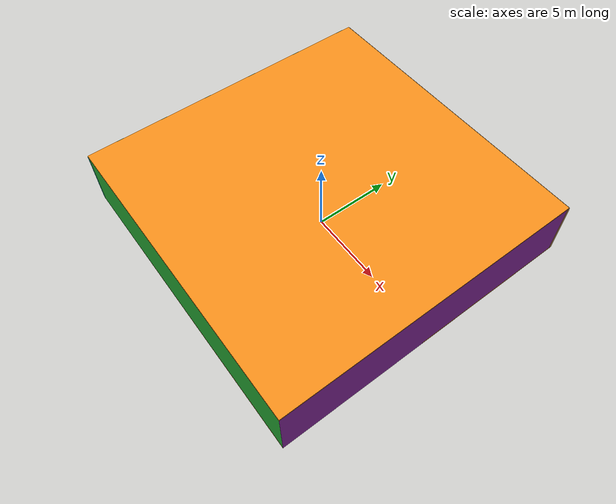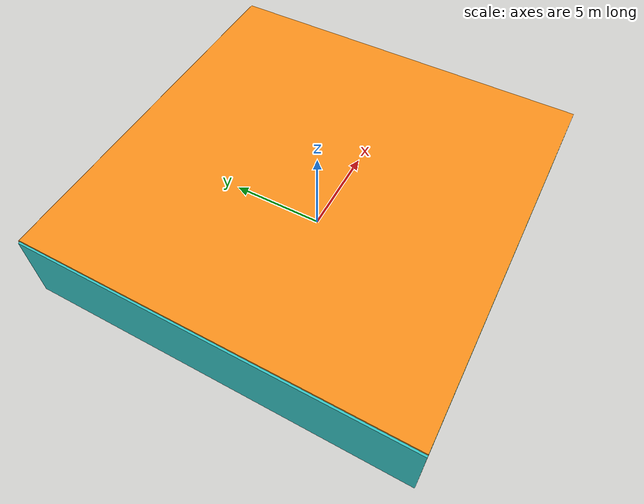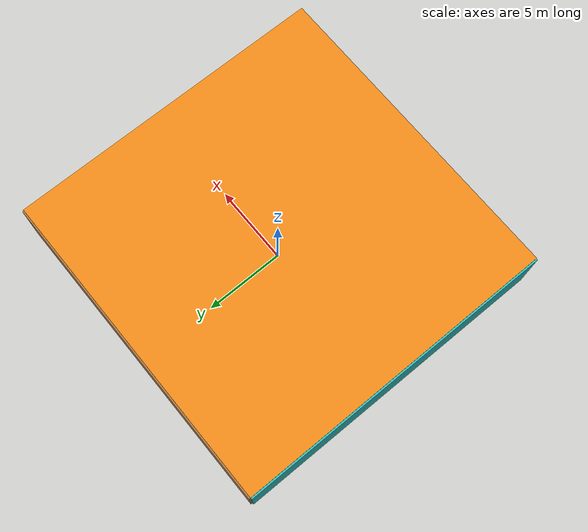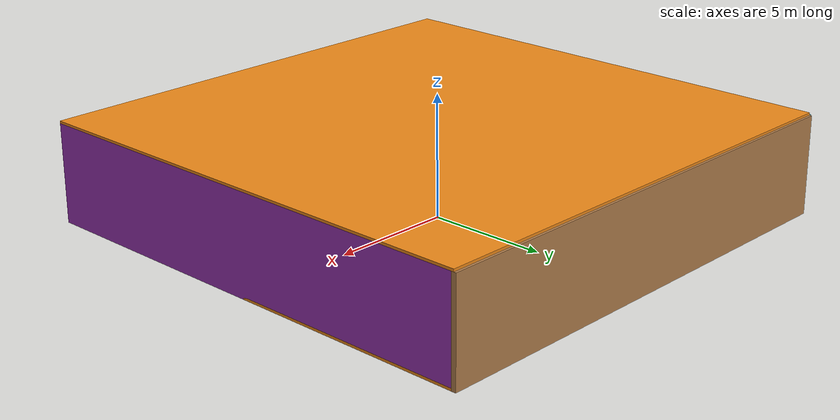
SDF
<sdf version="1.4">
 <world name="default">
  <physics type="ode">
   <max_step_size>0.001</max_step_size>
   <real_time_factor>1</real_time_factor>
   <real_time_update_rate>1000</real_time_update_rate>
   <gravity>0 0 -9.8</gravity>
  </physics>
  <scene><ambient>0.4 0.4 0.4 1</ambient><background>0.7 0.7 0.7 1</background><shadows>1</shadows></scene>
  <model name="Surrounding">
   <static>1</static>
   <link name="Ceiling">
    <collision name="Ceiling_Collision"><geometry><box><size>20 20 0.1</size></box></geometry></collision>
    <visual name="Ceiling_Visual">
     <geometry><box><size>20 20 0.1</size></box></geometry>
     <material>
      <script><uri>file://media/materials/scripts/gazebo.material</uri><name>Gazebo/Orange</name></script>
     </material>
    </visual>
    <pose>0 0 4.05 0 0 0</pose>
   </link>
   <link name="Wall_South">
    <collision name="Wall_South_Collision">
     <geometry><box><size>20 0 4</size></box></geometry>
     <pose>0 0 2 0 -0 0</pose>
    </collision>
    <visual name="Wall_South_Visual">
     <pose>0 0 2 0 -0 0</pose>
     <geometry><box><size>20 0 4</size></box></geometry>
     <material>
      <script><uri>file://media/materials/scripts/gazebo.material</uri><name>Gazebo/GreenGlow</name></script>
     </material>
    </visual>
    <velocity_decay><linear>0</linear><angular>0</angular></velocity_decay>
    <pose>0 -10 0 0 -0 0</pose>
   </link>
   <link name="Wall_East">
    <collision name="Wall_21_Collision">
     <geometry><box><size>20 0 4</size></box></geometry>
     <pose>0 0 2 0 -0 0</pose>
    </collision>
    <visual name="Wall_21_Visual">
     <pose>0 0 2 0 -0 0</pose>
     <geometry><box><size>20 0 4</size></box></geometry>
     <material>
      <script><uri>file://media/materials/scripts/gazebo.material</uri><name>Gazebo/PurpleGlow</name></script>
     </material>
    </visual>
    <velocity_decay><linear>0</linear><angular>0</angular></velocity_decay>
    <pose>10 0 0 0 -0 1.5708</pose>
   </link>
   <link name="Wall_North">
    <collision name="Wall_22_Collision">
     <geometry><box><size>20 0.2 4</size></box></geometry>
     <pose>0 0 2 0 -0 0</pose>
    </collision>
    <visual name="Wall_22_Visual">
     <pose>0 0 2 0 -0 0</pose>
     <geometry><box><size>20 0.2 4</size></box></geometry>
     <material>
      <script><uri>file://media/materials/scripts/gazebo.material</uri><name>Gazebo/Wood</name></script>
     </material>
    </visual>
    <velocity_decay><linear>0</linear><angular>0</angular></velocity_decay>
    <pose>0 10 0 0 -0 0</pose>
   </link>
   <link name="Wall_West">
    <collision name="Wall_23_Collision">
     <geometry><box><size>20 0.2 4</size></box></geometry>
     <pose>0 0 2 0 -0 0</pose>
    </collision>
    <visual name="Wall_23_Visual">
     <pose>0 0 2 0 -0 0</pose>
     <geometry><box><size>20 0.2 4</size></box></geometry>
     <material>
      <script><uri>file://media/materials/scripts/gazebo.material</uri><name>Gazebo/TurquoiseGlow</name></script>
     </material>
    </visual>
    <velocity_decay><linear>0</linear><angular>0</angular></velocity_decay>
    <pose>-10 0 0 0 0 -1.5708</pose>
   </link>
   <link name="Ground_link">
    <collision name="collision">
     <pose>0 0 .05 0 -0 0</pose>
     <geometry><box><size>20 20 0.1</size></box></geometry>
    </collision>
    <visual name="visual">
     <pose>0 0 .05 0 -0 0</pose>
     <geometry><box><size>20 20 0.1</size></box></geometry>
     <material>
      <script><uri>file://media/materials/scripts/gazebo.material</uri><name>Gazebo/Orange</name></script>
     </material>
    </visual>
   </link>
   <static>1</static>
  </model>
  <spherical_coordinates>
   <surface_model>EARTH_WGS84</surface_model>
   <latitude_deg>0</latitude_deg>
   <longitude_deg>0</longitude_deg>
   <elevation>0</elevation>
   <heading_deg>0</heading_deg>
  </spherical_coordinates>
  <light name="lightball_0" type="diffuse">
   <diffuse>0.8 0.8 0.8 1</diffuse>
   <specular>0.2 0.2 0.2 1</specular>
   <attenuation>
    <range>100</range>
    <constant>0.7</constant>
    <linear>0.01</linear>
    <quadratic>0.001</quadratic>
   </attenuation>
   <direction>-0.5 0.1 -0.9</direction>
   <pose>9.59237745647 -4.5522383532 1.18692268879 0 0 0</pose>
  </light>
  <light name="lightball_1" type="diffuse">
   <diffuse>0.8 0.8 0.8 1</diffuse>
   <specular>0.2 0.2 0.2 1</specular>
   <attenuation>
    <range>100</range>
    <constant>0.7</constant>
    <linear>0.01</linear>
    <quadratic>0.001</quadratic>
   </attenuation>
   <direction>-0.5 0.1 -0.9</direction>
   <pose>-7.270621424 -8.05684510675 0.977342575398 0 0 0</pose>
  </light>
  <light name="lightball_2" type="diffuse">
   <diffuse>0.8 0.8 0.8 1</diffuse>
   <specular>0.2 0.2 0.2 1</specular>
   <attenuation>
    <range>100</range>
    <constant>0.7</constant>
    <linear>0.01</linear>
    <quadratic>0.001</quadratic>
   </attenuation>
   <direction>-0.5 0.1 -0.9</direction>
   <pose>-8.0707978241 3.95356585335 3.39752456564 0 0 0</pose>
  </light>
  <light name="lightball_3" type="diffuse">
   <diffuse>0.8 0.8 0.8 1</diffuse>
   <specular>0.2 0.2 0.2 1</specular>
   <attenuation>
    <range>100</range>
    <constant>0.7</constant>
    <linear>0.01</linear>
    <quadratic>0.001</quadratic>
   </attenuation>
   <direction>-0.5 0.1 -0.9</direction>
   <pose>3.8479997512 0.752568183126 3.79705645428 0 0 0</pose>
  </light>
  <light name="lightball_4" type="diffuse">
   <diffuse>0.8 0.8 0.8 1</diffuse>
   <specular>0.2 0.2 0.2 1</specular>
   <attenuation>
    <range>100</range>
    <constant>0.7</constant>
    <linear>0.01</linear>
    <quadratic>0.001</quadratic>
   </attenuation>
   <direction>-0.5 0.1 -0.9</direction>
   <pose>-1.40926674031 -6.18828195534 0.669786948342 0 0 0</pose>
  </light>
  <light name="lightball_5" type="diffuse">
   <diffuse>0.8 0.8 0.8 1</diffuse>
   <specular>0.2 0.2 0.2 1</specular>
   <attenuation>
    <range>100</range>
    <constant>0.7</constant>
    <linear>0.01</linear>
    <quadratic>0.001</quadratic>
   </attenuation>
   <direction>-0.5 0.1 -0.9</direction>
   <pose>3.13722959302 -1.14433219258 3.54102153753 0 0 0</pose>
  </light>
  <light name="lightball_6" type="diffuse">
   <diffuse>0.8 0.8 0.8 1</diffuse>
   <specular>0.2 0.2 0.2 1</specular>
   <attenuation>
    <range>100</range>
    <constant>0.7</constant>
    <linear>0.01</linear>
    <quadratic>0.001</quadratic>
   </attenuation>
   <direction>-0.5 0.1 -0.9</direction>
   <pose>2.19738973656 -3.59301337738 0.664202445645 0 0 0</pose>
  </light>
  <light name="lightball_7" type="diffuse">
   <diffuse>0.8 0.8 0.8 1</diffuse>
   <specular>0.2 0.2 0.2 1</specular>
   <attenuation>
    <range>100</range>
    <constant>0.7</constant>
    <linear>0.01</linear>
    <quadratic>0.001</quadratic>
   </attenuation>
   <direction>-0.5 0.1 -0.9</direction>
   <pose>5.50078434165 3.7799180944 1.01138204494 0 0 0</pose>
  </light>
  <light name="lightball_8" type="diffuse">
   <diffuse>0.8 0.8 0.8 1</diffuse>
   <specular>0.2 0.2 0.2 1</specular>
   <attenuation>
    <range>100</range>
    <constant>0.7</constant>
    <linear>0.01</linear>
    <quadratic>0.001</quadratic>
   </attenuation>
   <direction>-0.5 0.1 -0.9</direction>
   <pose>1.54622868277 -9.47401350124 1.65834253552 0 0 0</pose>
  </light>
  <light name="lightball_9" type="diffuse">
   <diffuse>0.8 0.8 0.8 1</diffuse>
   <specular>0.2 0.2 0.2 1</specular>
   <attenuation>
    <range>100</range>
    <constant>0.7</constant>
    <linear>0.01</linear>
    <quadratic>0.001</quadratic>
   </attenuation>
   <direction>-0.5 0.1 -0.9</direction>
   <pose>7.29374408726 2.28345384804 1.18261110952 0 0 0</pose>
  </light>
  <include><uri>model://table</uri><pose>-1.69028752728 1.81302185429 0 0 0 0.748223176667</pose></include>
  <include>
   <uri>model://robocup_3Dsim_goal</uri>
   <pose>-1.8863062232 4.74790654995 0 0 0 0.585997660548</pose>
  </include>
  <include><uri>model://table</uri><pose>4.7725935811 4.43556551302 0 0 0 1.86352463124</pose></include>
  <include>
   <uri>model://robocup_3Dsim_goal</uri>
   <pose>6.94436617901 4.77139212107 0 0 0 0.815599758902</pose>
  </include>
 </world>
</sdf>

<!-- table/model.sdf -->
<sdf version="1.5">
  <model name="table">
    <static>true</static>
    <link name="link">
      <collision name="surface">
        <pose>0 0 1.0 0 0 0</pose>
        <geometry>
          <box>
            <size>1.5 0.8 0.03</size>
          </box>
        </geometry>
        <surface>
          <friction>
            <ode>
              <mu>0.6</mu>
              <mu2>0.6</mu2>
            </ode>
          </friction>
        </surface>
      </collision>
      <visual name="visual1">
        <pose>0 0 1.0 0 0 0</pose>
        <geometry>
          <box>
            <size>1.5 0.8 0.03</size>
          </box>
        </geometry>
        <material>
          <script>
            <uri>model://media/materials/scripts/gazebo.material</uri>
            <name>Gazebo/Wood</name>
          </script>
        </material>
      </visual>
      <collision name="front_left_leg">
        <pose>0.68 0.38 0.5 0 0 0</pose>
        <geometry>
          <cylinder>
            <radius>0.02</radius>
            <length>1.0</length>
          </cylinder>
        </geometry>
      </collision>
      <visual name="front_left_leg">
        <pose>0.68 0.38 0.5 0 0 0</pose>
        <geometry>
          <cylinder>
            <radius>0.02</radius>
            <length>1.0</length>
          </cylinder>
        </geometry>
        <material>
          <script>
            <uri>model://media/materials/scripts/gazebo.material</uri>
            <name>Gazebo/Grey</name>
          </script>
        </material>
      </visual>
      <collision name="front_right_leg">
        <pose>0.68 -0.38 0.5 0 0 0</pose>
        <geometry>
          <cylinder>
            <radius>0.02</radius>
            <length>1.0</length>
          </cylinder>
        </geometry>
      </collision>
      <visual name="front_right_leg">
        <pose>0.68 -0.38 0.5 0 0 0</pose>
        <geometry>
          <cylinder>
            <radius>0.02</radius>
            <length>1.0</length>
          </cylinder>
        </geometry>
        <material>
          <script>
            <uri>model://media/materials/scripts/gazebo.material</uri>
            <name>Gazebo/Grey</name>
          </script>
        </material>
      </visual>
      <collision name="back_right_leg">
        <pose>-0.68 -0.38 0.5 0 0 0</pose>
        <geometry>
          <cylinder>
            <radius>0.02</radius>
            <length>1.0</length>
          </cylinder>
        </geometry>
      </collision>
      <visual name="back_right_leg">
        <pose>-0.68 -0.38 0.5 0 0 0</pose>
        <geometry>
          <cylinder>
            <radius>0.02</radius>
            <length>1.0</length>
          </cylinder>
        </geometry>
        <material>
          <script>
            <uri>model://media/materials/scripts/gazebo.material</uri>
            <name>Gazebo/Grey</name>
          </script>
        </material>
      </visual>
      <collision name="back_left_leg">
        <pose>-0.68 0.38 0.5 0 0 0</pose>
        <geometry>
          <cylinder>
            <radius>0.02</radius>
            <length>1.0</length>
          </cylinder>
        </geometry>
      </collision>
      <visual name="back_left_leg">
        <pose>-0.68 0.38 0.5 0 0 0</pose>
        <geometry>
          <cylinder>
            <radius>0.02</radius>
            <length>1.0</length>
          </cylinder>
        </geometry>
        <material>
          <script>
            <uri>model://media/materials/scripts/gazebo.material</uri>
            <name>Gazebo/Grey</name>
          </script>
        </material>
      </visual>
    </link>
  </model>
</sdf>

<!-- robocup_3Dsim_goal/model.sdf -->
<sdf version="1.5">
  <model name="robocup_3d_goal">
    <static>true</static>
    <link name="left_post">
      <pose>0 1.05 0.45 0 0 0</pose>
      <collision name="collision">
        <geometry>
          <cylinder>
            <radius>0.05</radius>
            <length>0.9</length>
          </cylinder>
        </geometry>
      </collision>
      <visual name="visual">
        <geometry>
          <cylinder>
            <radius>0.05</radius>
            <length>0.9</length>
          </cylinder>
        </geometry>
        <material>
          <script>
            <uri>file://media/materials/scripts/gazebo.material</uri>
            <name>Gazebo/ZincYellow</name>
          </script>
        </material>
      </visual>
    </link>
    <link name="left_support_horiz_lower">
      <pose>0.30 1.05 0.01 0 0 0</pose>
      <collision name="collision">
        <geometry>
          <box>
            <size>0.50 0.02 0.02</size>
          </box>
        </geometry>
      </collision>
      <visual name="visual">
        <geometry>
          <box>
            <size>0.50 0.02 0.02</size>
          </box>
        </geometry>
        <material>
          <script>
            <uri>file://media/materials/scripts/gazebo.material</uri>
            <name>Gazebo/White</name>
          </script>
        </material>
      </visual>
    </link>
    <link name="left_support_horiz_upper">
      <pose>0.30 1.05 0.79 0 0 0</pose>
      <collision name="collision">
        <geometry>
          <box>
            <size>0.50 0.02 0.02</size>
          </box>
        </geometry>
      </collision>
      <visual name="visual">
        <geometry>
          <box>
            <size>0.50 0.02 0.02</size>
          </box>
        </geometry>
        <material>
          <script>
            <uri>file://media/materials/scripts/gazebo.material</uri>
            <name>Gazebo/White</name>
          </script>
        </material>
      </visual>
    </link>
    <link name="left_support_vertical">
      <pose>0.56 1.05 0.4 0 1.5708 0</pose>
      <collision name="collision">
        <geometry>
          <box>
            <size>0.80 0.02 0.02</size>
          </box>
        </geometry>
      </collision>
      <visual name="visual">
        <geometry>
          <box>
            <size>0.80 0.02 0.02</size>
          </box>
        </geometry>
        <material>
          <script>
            <uri>file://media/materials/scripts/gazebo.material</uri>
            <name>Gazebo/White</name>
          </script>
        </material>
      </visual>
    </link>
    <link name="right_support_horiz_lower">
      <pose>0.30 -1.05 0.01 0 0 0</pose>
      <collision name="collision">
        <geometry>
          <box>
            <size>0.50 0.02 0.02</size>
          </box>
        </geometry>
      </collision>
      <visual name="visual">
        <geometry>
          <box>
            <size>0.50 0.02 0.02</size>
          </box>
        </geometry>
        <material>
          <script>
            <uri>file://media/materials/scripts/gazebo.material</uri>
            <name>Gazebo/White</name>
          </script>
        </material>
      </visual>
    </link>
    <link name="right_support_horiz_upper">
      <pose>0.30 -1.05 0.79 0 0 0</pose>
      <collision name="collision">
        <geometry>
          <box>
            <size>0.50 0.02 0.02</size>
          </box>
        </geometry>
      </collision>
      <visual name="visual">
        <geometry>
          <box>
            <size>0.50 0.02 0.02</size>
          </box>
        </geometry>
        <material>
          <script>
            <uri>file://media/materials/scripts/gazebo.material</uri>
            <name>Gazebo/White</name>
          </script>
        </material>
      </visual>
    </link>
    <link name="right_support_vertical">
      <pose>0.56 -1.05 0.4 0 1.5708 0</pose>
      <collision name="collision">
        <geometry>
          <box>
            <size>0.80 0.02 0.02</size>
          </box>
        </geometry>
      </collision>
      <visual name="visual">
        <geometry>
          <box>
            <size>0.80 0.02 0.02</size>
          </box>
        </geometry>
        <material>
          <script>
            <uri>file://media/materials/scripts/gazebo.material</uri>
            <name>Gazebo/White</name>
          </script>
        </material>
      </visual>
    </link>
    <link name="center_support_horiz_lower">
      <pose>0.56 0 0.01 0 1.5708 0</pose>
      <collision name="collision">
        <geometry>
          <box>
            <size>0.02 2.08 0.02</size>
          </box>
        </geometry>
      </collision>
      <visual name="visual">
        <geometry>
          <box>
            <size>0.02 2.08 0.02</size>
          </box>
        </geometry>
        <material>
          <script>
            <uri>file://media/materials/scripts/gazebo.material</uri>
            <name>Gazebo/White</name>
          </script>
        </material>
      </visual>
    </link>
    <link name="center_support_horiz_upper">
      <pose>0.56 0 0.79 0 1.5708 0</pose>
      <collision name="collision">
        <geometry>
          <box>
            <size>0.02 2.08 0.02</size>
          </box>
        </geometry>
      </collision>
      <visual name="visual">
        <geometry>
          <box>
            <size>0.02 2.08 0.02</size>
          </box>
        </geometry>
        <material>
          <script>
            <uri>file://media/materials/scripts/gazebo.material</uri>
            <name>Gazebo/White</name>
          </script>
        </material>
      </visual>
    </link>
    <link name="right_post">
      <pose>0 -1.05 0.45 0 0 0</pose>
      <collision name="collision">
        <geometry>
          <cylinder>
            <radius>0.05</radius>
            <length>0.9</length>
          </cylinder>
        </geometry>
      </collision>
      <visual name="visual">
        <geometry>
          <cylinder>
            <radius>0.05</radius>
            <length>0.9</length>
          </cylinder>
        </geometry>
        <material>
          <script>
            <uri>file://media/materials/scripts/gazebo.material</uri>
            <name>Gazebo/ZincYellow</name>
          </script>
        </material>
      </visual>
    </link>
    <link name="crossbar">
      <pose>0 0 0.85 1.57 1.57 0</pose>
      <collision name="collision">
        <geometry>
          <cylinder>
            <radius>0.05</radius>
            <length>2.0</length>
          </cylinder>
        </geometry>
      </collision>
      <visual name="visual">
        <geometry>
          <cylinder>
            <radius>0.05</radius>
            <length>2.0</length>
          </cylinder>
        </geometry>
        <material>
          <script>
            <uri>file://media/materials/scripts/gazebo.material</uri>
            <name>Gazebo/ZincYellow</name>
          </script>
        </material>
      </visual>
    </link>
    <link name="center_net">
      <pose>0.56 0 0.40 0 0 0</pose>
      <collision name="collision">
        <geometry>
          <box>
            <size>0.01 2.1 0.80</size>
          </box>
        </geometry>
      </collision>
      <visual name="visual">
        <geometry>
          <box>
            <size>0.01 2.1 0.80</size>
          </box>
        </geometry>
        <material>
          <script>
            <uri>model://../model_source/models/robocup09_spl_field/materials/scripts/</uri>
            <uri>model://../model_source/models/robocup09_spl_field/materials/textures/</uri>
            <name>RoboCup/Net</name>
          </script>
        </material>
      </visual>
    </link>
    <link name="left_net">
      <pose>0.30 1.05 0.40 0 0 0</pose>
      <collision name="collision">
        <geometry>
          <box>
            <size>0.50 0.01 0.76</size>
          </box>
        </geometry>
      </collision>
      <visual name="visual">
        <geometry>
          <box>
            <size>0.50 0.01 0.76</size>
          </box>
        </geometry>
        <material>
          <script>
            <uri>model://../model_source/models/robocup09_spl_field/materials/scripts/</uri>
            <uri>model://../model_source/models/robocup09_spl_field/materials/textures/</uri>
            <name>RoboCup/Net</name>
          </script>
        </material>
      </visual>
    </link>
    <link name="right_net">
      <pose>0.30 -1.05 0.40 0 0 0</pose>
      <collision name="collision">
        <geometry>
          <box>
            <size>0.50 0.01 0.76</size>
          </box>
        </geometry>
      </collision>
      <visual name="visual">
        <geometry>
          <box>
            <size>0.50 0.01 0.76</size>
          </box>
        </geometry>
        <material>
          <script>
            <uri>model://../model_source/models/robocup09_spl_field/materials/scripts/</uri>
            <uri>model://../model_source/models/robocup09_spl_field/materials/textures/</uri>
            <name>RoboCup/Net</name>
          </script>
        </material>
      </visual>
    </link>
  </model>
</sdf>
